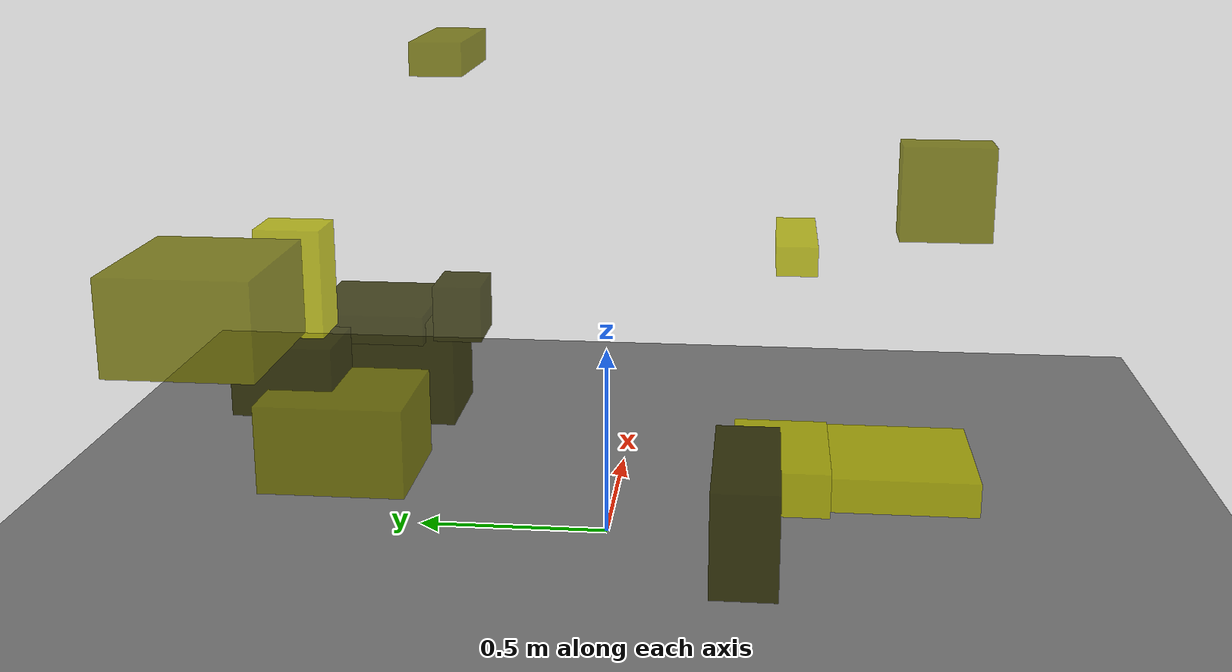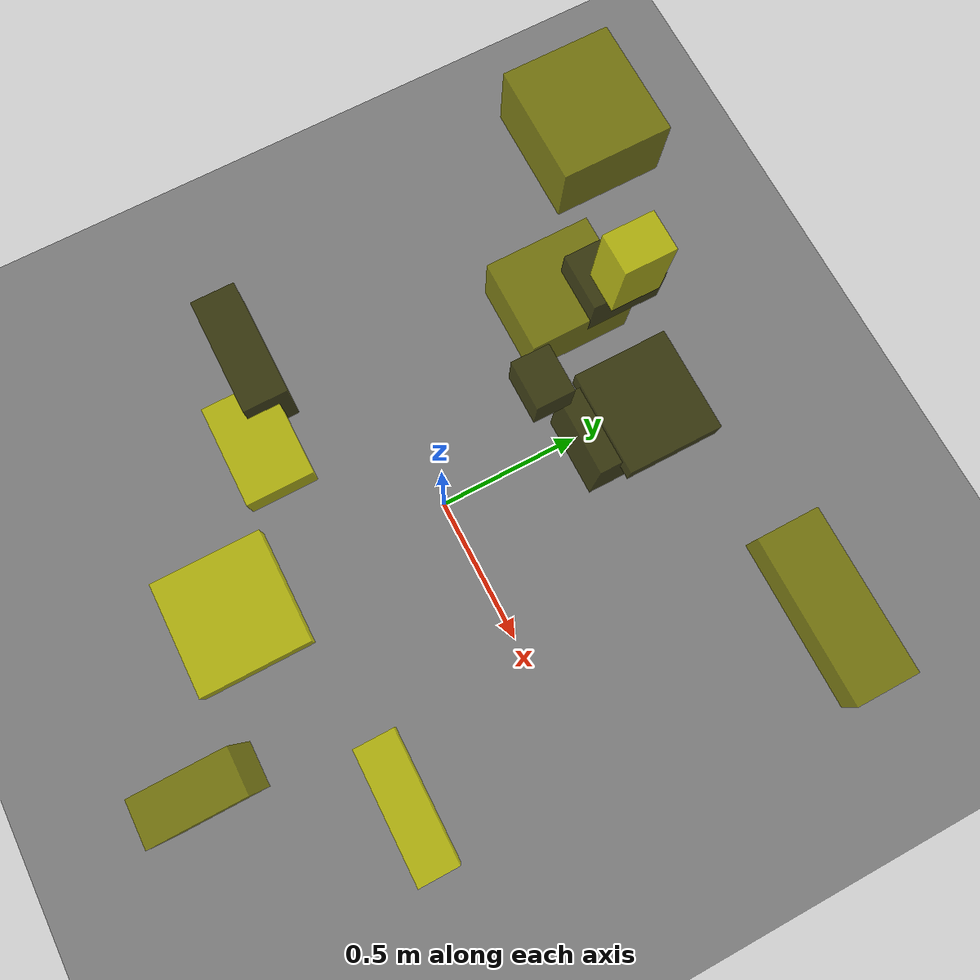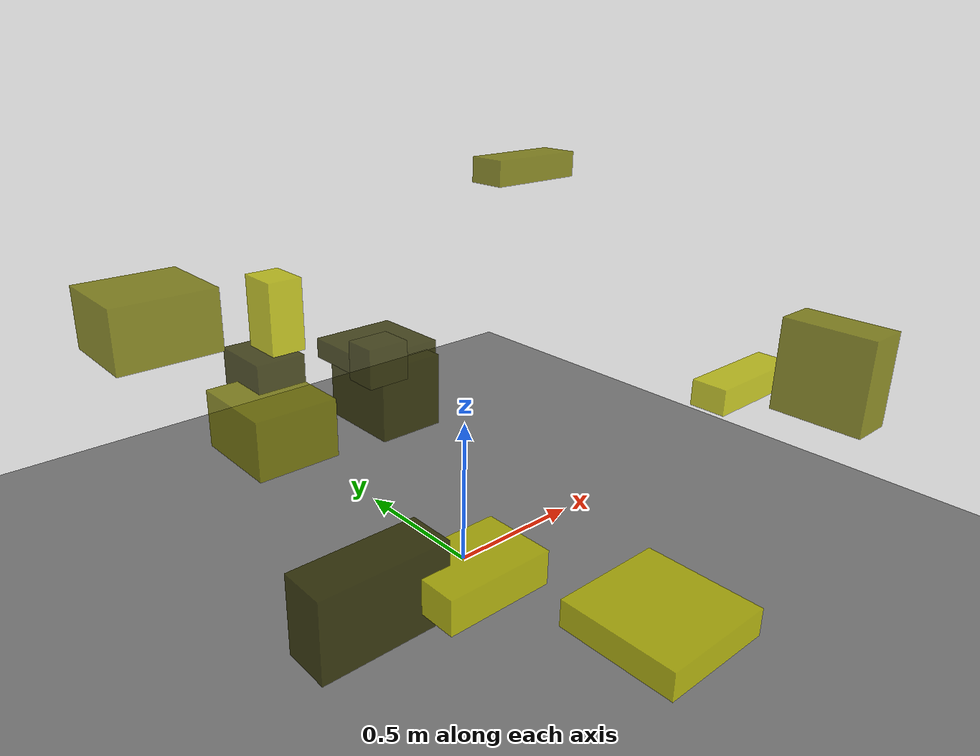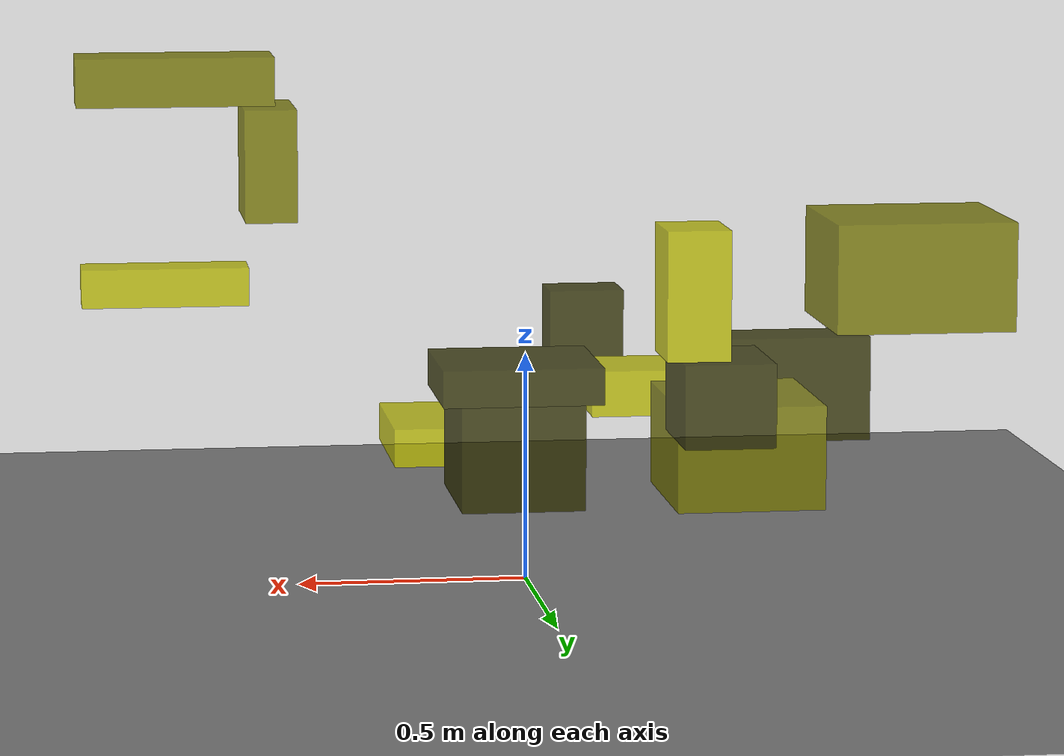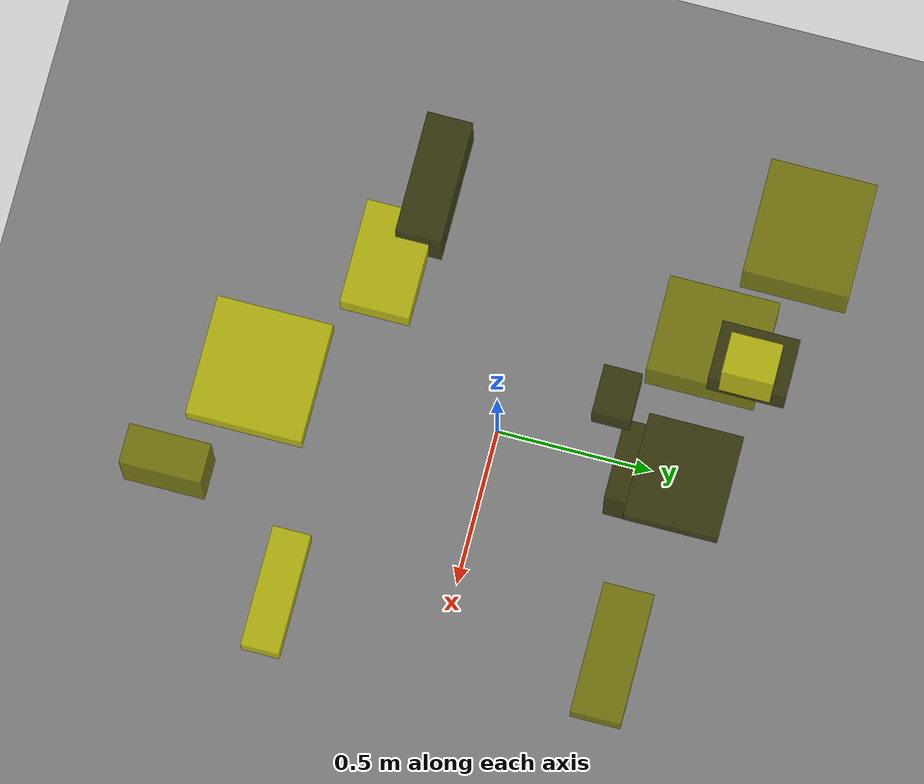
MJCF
<?xml version="1.0"?>
<mujoco model="obstacle_scene">
  <compiler angle="radian" coordinate="local"/>
  <option timestep="0.001" gravity="0 0 -9.81"/>

  <asset>
    <material name="obstacle_mat" rgba="0.8 0.8 0.0 0.8"/>
    <material name="ground_mat" rgba="0.5 0.5 0.5 1"/>
  </asset>

  <worldbody>
    <!-- Ground plane -->
    <geom name="ground" type="plane" size="3 3 0.1" material="ground_mat"/>

    <!-- Obstacles -->
    <body name="obstacle_0" pos="0.103114 0.611464 0.553693">
      <geom name="obs_0" type="box" size="0.162463 0.147816 0.037255" rgba="0.2 0.2 0.0 0.8"/>
    </body>
    <body name="obstacle_1" pos="0.784544 0.551207 1.161345">
      <geom name="obs_1" type="box" size="0.197137 0.076191 0.048340" rgba="0.5 0.5 0.0 0.8"/>
    </body>
    <body name="obstacle_2" pos="0.761691 -0.491559 0.595675">
      <geom name="obs_2" type="box" size="0.188323 0.059596 0.043071" rgba="0.8 0.8 0.0 0.8"/>
    </body>
    <body name="obstacle_3" pos="-0.635897 -0.366641 0.355210">
      <geom name="obs_3" type="box" size="0.195985 0.072625 0.118516" rgba="0.2 0.2 0.0 0.8"/>
    </body>
    <body name="obstacle_4" pos="-0.359712 0.590440 0.398633">
      <geom name="obs_4" type="box" size="0.151371 0.173872 0.106381" rgba="0.5 0.5 0.0 0.8"/>
    </body>
    <body name="obstacle_5" pos="-0.365231 -0.443632 0.348113">
      <geom name="obs_5" type="box" size="0.167512 0.110286 0.051798" rgba="0.8 0.8 0.0 0.8"/>
    </body>
    <body name="obstacle_6" pos="-0.072990 0.356400 0.628539">
      <geom name="obs_6" type="box" size="0.076718 0.059939 0.069102" rgba="0.2 0.2 0.0 0.8"/>
    </body>
    <body name="obstacle_7" pos="-0.669186 0.799032 0.789478">
      <geom name="obs_7" type="box" size="0.179433 0.164344 0.108458" rgba="0.5 0.5 0.0 0.8"/>
    </body>
    <body name="obstacle_8" pos="0.037728 -0.754129 0.189958">
      <geom name="obs_8" type="box" size="0.192416 0.186001 0.044180" rgba="0.8 0.8 0.0 0.8"/>
    </body>
    <body name="obstacle_9" pos="-0.299259 0.731009 0.522769">
      <geom name="obs_9" type="box" size="0.091845 0.121948 0.084870" rgba="0.2 0.2 0.0 0.8"/>
    </body>
    <body name="obstacle_10" pos="0.497044 -0.891394 0.828526">
      <geom name="obs_10" type="box" size="0.061068 0.125945 0.132229" rgba="0.5 0.5 0.0 0.8"/>
    </body>
    <body name="obstacle_11" pos="-0.242225 0.728629 0.739239">
      <geom name="obs_11" type="box" size="0.064118 0.080202 0.131680" rgba="0.8 0.8 0.0 0.8"/>
    </body>
    <body name="obstacle_12" pos="0.098109 0.555380 0.428794">
      <geom name="obs_12" type="box" size="0.125603 0.161415 0.135790" rgba="0.2 0.2 0.0 0.8"/>
    </body>
  </worldbody>
</mujoco>
